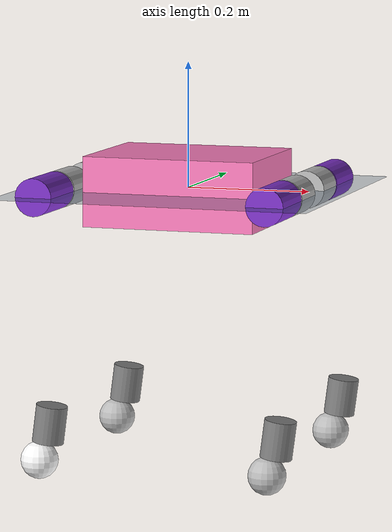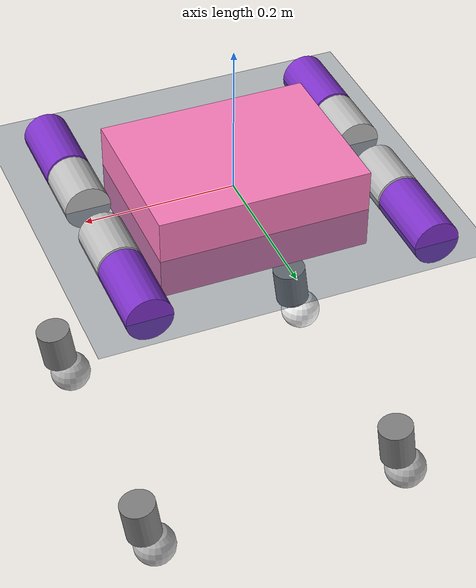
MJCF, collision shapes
<mujoco model="Ddog scene">
  <include file="Ddog.xml"/>

  <statistic center="1.0 0.7 1.0" extent="0.8"/>

  <visual>
    <headlight diffuse="0.6 0.6 0.6" ambient="0.1 0.1 0.1" specular="0.9 0.9 0.9"/>
    <rgba haze="0.15 0.25 0.35 1"/>
    <global azimuth="-140" elevation="-20"/>
  </visual>

  <asset>
    <texture type="skybox" builtin="flat" rgb1="0 0 0" rgb2="0 0 0" width="512" height="3072"/>
    <texture type="2d" name="groundplane" builtin="checker" mark="edge" rgb1="0.2 0.3 0.4" rgb2="0.1 0.2 0.3" markrgb="0.8 0.8 0.8" width="300" height="300"/>
    <material name="groundplane" texture="groundplane" texuniform="true" texrepeat="5 5" reflectance="0.2"/>
  </asset>

  <worldbody>
    <light pos="1 0 3.5" dir="0 0 -1" directional="true"/>
    <geom name="floor" size="0 0 0.05" type="plane" material="groundplane"/>
  </worldbody>
</mujoco>

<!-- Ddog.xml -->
<mujoco model="littledog">
  <compiler angle="radian" meshdir="meshes/"/>

  <asset>
    <mesh name="base_link_mesh"    file="base_link.STL"/>
    <mesh name="FL_HIP_mesh"       file="FL_HIP_Link.STL"/>
    <mesh name="FL_THIGH_mesh"     file="FL_THIGH_Link.STL"/>
    <mesh name="FL_CALF_mesh"      file="FL_CALF_Link.STL"/>
    <mesh name="FL_FOOT_mesh"      file="FL_FOOT_Link.STL"/>

    <mesh name="FR_HIP_mesh"       file="FR_HIP_Link.STL"/>
    <mesh name="FR_THIGH_mesh"     file="FR_THIGH_Link.STL"/>
    <mesh name="FR_CALF_mesh"      file="FR_CALF_Link.STL"/>
    <mesh name="FR_FOOT_mesh"      file="FR_FOOT_Link.STL"/>

    <mesh name="RL_HIP_mesh"       file="RL_HIP_Link.STL"/>
    <mesh name="RL_THIGH_mesh"     file="RL_THIGH_Link.STL"/>
    <mesh name="RL_CALF_mesh"      file="RL_CALF_Link.STL"/>
    <mesh name="RL_FOOT_mesh"      file="RL_FOOT_Link.STL"/>

    <mesh name="RR_HIP_mesh"       file="RR_HIP_Link.STL"/>
    <mesh name="RR_THIGH_mesh"     file="RR_THIGH_Link.STL"/>
    <mesh name="RR_CALF_mesh"      file="RR_CALF_Link.STL"/>
    <mesh name="RR_FOOT_mesh"      file="RR_FOOT_Link.STL"/>
  </asset>

  <worldbody>
    <light directional="true" diffuse=".8 .8 .8" specular=".2 .2 .2" pos="0 0 5" dir="0 0 -1"/>

    <body name="base" pos="0 0 0">
      <freejoint/>
      <inertial pos="0 0 0" mass="6.7"
                diaginertia="0.03265071 0.052731396 0.073843864"/>
      <geom type="mesh" mesh="base_link_mesh" contype="0" conaffinity="0" group="1"/>
      <geom size="0.14 0.108 0.056" type="box" rgba="1 0.5 0.75 0.5" mass="0" group="2"/>

      <body name="FL_hip" pos="0.1875 0.062 0">
        <joint name="FL_hip_joint" pos="0 0 0" axis="1 0 0" range="-0.5 0.5"/>
        <geom type="mesh" mesh="FL_HIP_mesh" contype="0" conaffinity="0" group="1"/>
        <geom size="0.03 0.0365" quat="0.707 0.707 0 0" type="cylinder" rgba="0.75 0.75 0.75 0.5" group="2"/>

        <body name="FL_thigh" pos="0 0.12 0">
          <joint name="FL_thigh_joint" pos="0 0 0" axis="0 1 0" range="-1.85 3.4"/>
          <geom type="mesh" mesh="FL_THIGH_mesh" contype="0" conaffinity="0" group="1"/>
          <geom size="0.03 0.05" pos="0 -0.03 0" quat="0.707 0.707 0 0" type="cylinder" rgba="0.5 0.2 0.8 0.5" group="2"/>

          <body name="FL_calf" pos="0 0 -0.2">
            <joint name="FL_calf_joint" pos="0 0 0" axis="0 1 0" range="-2.757 -0.66"/>
            <geom type="mesh" mesh="FL_CALF_mesh" contype="0" conaffinity="0" group="1"/>
            <geom size="0.025 0.03" pos="0.018 0 -0.16" quat="0.998 0 0.065 0" type="cylinder" group="2"/>

            <body name="FL_foot" pos="0 0 -0.219">
               <geom type="mesh" mesh="FL_FOOT_mesh" contype="0" conaffinity="0" group="1"/>
               <geom size="0.03" rgba="0.75 0.75 0.75 0.5" group="2"/>
            </body>
          </body>
        </body>
      </body>

      <body name="FR_hip" pos="0.1875 -0.062 0">
        <joint name="FR_hip_joint" pos="0 0 0" axis="1 0 0" range="-0.5 0.5"/>
        <geom type="mesh" mesh="FR_HIP_mesh" contype="0" conaffinity="0" group="1"/>
        <geom size="0.03 0.0365" quat="0.707 0.707 0 0" type="cylinder" rgba="0.75 0.75 0.75 0.5" group="2"/>

        <body name="FR_thigh" pos="0 -0.12 0">
          <joint name="FR_thigh_joint" pos="0 0 0" axis="0 1 0" range="-1.85 3.4"/>
          <geom type="mesh" mesh="FR_THIGH_mesh" contype="0" conaffinity="0" group="1"/>
          <geom size="0.03 0.05" pos="0 0.03 0" quat="0.707 0.707 0 0" type="cylinder" rgba="0.5 0.2 0.8 0.5" group="2"/>

          <body name="FR_calf" pos="0 0 -0.2">
            <joint name="FR_calf_joint" pos="0 0 0" axis="0 1 0" range="-2.757 -0.66"/>
            <geom type="mesh" mesh="FR_CALF_mesh" contype="0" conaffinity="0" group="1"/>
            <geom size="0.025 0.03" pos="0.018 0 -0.16" quat="0.998 0 0.065 0" type="cylinder" group="2"/>

            <body name="FR_foot" pos="0 0 -0.219">
               <geom type="mesh" mesh="FR_FOOT_mesh" contype="0" conaffinity="0" group="1"/>
               <geom size="0.03" rgba="0.75 0.75 0.75 0.5" group="2"/>
            </body>
          </body>
        </body>
      </body>

      <body name="RL_hip" pos="-0.1875 0.062 0">
        <joint name="RL_hip_joint" pos="0 0 0" axis="1 0 0" range="-0.5 0.5"/>
        <geom type="mesh" mesh="RL_HIP_mesh" contype="0" conaffinity="0" group="1"/>
        <geom size="0.03 0.0365" quat="0.707 0.707 0 0" type="cylinder" rgba="0.75 0.75 0.75 0.5" group="2"/>

        <body name="RL_thigh" pos="0 0.12 0">
          <joint name="RL_thigh_joint" pos="0 0 0" axis="0 1 0" range="-1.85 3.4"/>
          <geom type="mesh" mesh="RL_THIGH_mesh" contype="0" conaffinity="0" group="1"/>
          <geom size="0.03 0.05" pos="0 -0.03 0" quat="0.707 0.707 0 0" type="cylinder" rgba="0.5 0.2 0.8 0.5" group="2"/>

          <body name="RL_calf" pos="0 0 -0.2">
            <joint name="RL_calf_joint" pos="0 0 0" axis="0 1 0" range="-2.757 -0.66"/>
            <geom type="mesh" mesh="RL_CALF_mesh" contype="0" conaffinity="0" group="1"/>
            <geom size="0.025 0.03" pos="0.018 0 -0.16" quat="0.998 0 0.065 0" type="cylinder" group="2"/>

            <body name="RL_foot" pos="0 0 -0.219">
               <geom type="mesh" mesh="RL_FOOT_mesh" contype="0" conaffinity="0" group="1"/>
               <geom size="0.03" rgba="0.75 0.75 0.75 0.5" group="2"/>
            </body>
          </body>
        </body>
      </body>

      <body name="RR_hip" pos="-0.1875 -0.062 0">
        <joint name="RR_hip_joint" pos="0 0 0" axis="1 0 0" range="-0.5 0.5"/>
        <geom type="mesh" mesh="RR_HIP_mesh" contype="0" conaffinity="0" group="1"/>
        <geom size="0.03 0.0365" quat="0.707 0.707 0 0" type="cylinder" rgba="0.75 0.75 0.75 0.5" group="2"/>

        <body name="RR_thigh" pos="0 -0.12 0">
          <joint name="RR_thigh_joint" pos="0 0 0" axis="0 1 0" range="-1.85 3.4"/>
          <geom type="mesh" mesh="RR_THIGH_mesh" contype="0" conaffinity="0" group="1"/>
          <geom size="0.03 0.05" pos="0 0.03 0" quat="0.707 0.707 0 0" type="cylinder" rgba="0.5 0.2 0.8 0.5" group="2"/>

          <body name="RR_calf" pos="0 0 -0.2">
            <joint name="RR_calf_joint" pos="0 0 0" axis="0 1 0" range="-2.757 -0.66"/>
            <geom type="mesh" mesh="RR_CALF_mesh" contype="0" conaffinity="0" group="1"/>
            <geom size="0.025 0.03" pos="0.018 0 -0.16" quat="0.998 0 0.065 0" type="cylinder" group="2"/>

            <body name="RR_foot" pos="0 0 -0.219">
               <geom type="mesh" mesh="RR_FOOT_mesh" contype="0" conaffinity="0" group="1"/>
               <geom size="0.03" rgba="1 1 1 0.5" group="2"/>
            </body>
          </body>
        </body>
      </body>

    </body>
  </worldbody>
  <actuator>
    <motor name="FL_hip"   joint="FL_hip_joint"   gear="1" ctrlrange="-27 27" ctrllimited="true"/>
    <motor name="FL_thigh" joint="FL_thigh_joint" gear="1" ctrlrange="-27 27" ctrllimited="true"/>
    <motor name="FL_calf"  joint="FL_calf_joint"  gear="1" ctrlrange="-27 27" ctrllimited="true"/>

    <motor name="FR_hip"   joint="FR_hip_joint"   gear="1" ctrlrange="-27 27" ctrllimited="true"/>
    <motor name="FR_thigh" joint="FR_thigh_joint" gear="1" ctrlrange="-27 27" ctrllimited="true"/>
    <motor name="FR_calf"  joint="FR_calf_joint"  gear="1" ctrlrange="-27 27" ctrllimited="true"/>

    <motor name="RL_hip"   joint="RL_hip_joint"   gear="1" ctrlrange="-27 27" ctrllimited="true"/>
    <motor name="RL_thigh" joint="RL_thigh_joint" gear="1" ctrlrange="-27 27" ctrllimited="true"/>
    <motor name="RL_calf"  joint="RL_calf_joint"  gear="1" ctrlrange="-27 27" ctrllimited="true"/>

    <motor name="RR_hip"   joint="RR_hip_joint"   gear="1" ctrlrange="-27 27" ctrllimited="true"/>
    <motor name="RR_thigh" joint="RR_thigh_joint" gear="1" ctrlrange="-27 27" ctrllimited="true"/>
    <motor name="RR_calf"  joint="RR_calf_joint"  gear="1" ctrlrange="-27 27" ctrllimited="true"/>
  </actuator>
</mujoco>
